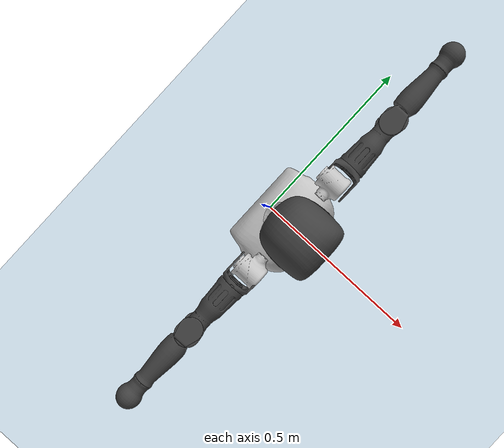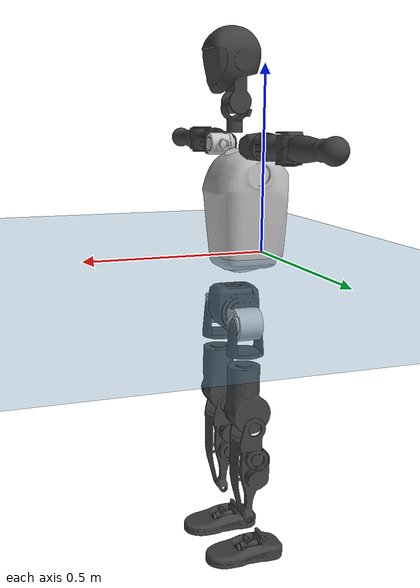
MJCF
<mujoco model="T1">
  <compiler angle="radian" assetdir="assets" balanceinertia="true" inertiafromgeom="false"/>

  <option timestep="0.005" density="1.2" viscosity="2e-05"/>

  <size nkey="1"/>

  <visual>
    <quality shadowsize="8192"/>
    <map shadowclip="0.5"/>
  </visual>

  <default>
    <default class="/">
      <joint armature="0.01" damping="0.01" frictionloss="0.1"/>
      <geom contype="0" conaffinity="0" group="1" solref="-1000 -80"/>
      <site size="0.01 0.005 0.005" group="5"/>
      <general forcelimited="true" biastype="affine" gainprm="25" biasprm="0 -25 -0.6"/>
      <default class="t1">
        <geom rgba="0.25 0.25 0.25 1"/>
        <default class="visual">
          <geom type="mesh" group="2"/>
        </default>
        <default class="collision">
          <geom group="3"/>
        </default>
        <default class="foot">
          <geom size="0.1115 0.05 0.015" type="box" condim="6" group="4" priority="1" solimp="0.015 1 0.015"/>
        </default>
        <default class="reward_collision_sphere">
          <geom group="5" rgba="1 0 0 1"/>
        </default>
      </default>
    </default>
  </default>

  <asset>
    <texture type="skybox" colorspace="auto" name="//unnamed_texture_0" builtin="gradient" rgb1="0.95 0.95 0.95" rgb2="0.95 0.95 0.95" width="100" height="600"/>
    <texture type="2d" colorspace="auto" name="texplane" builtin="checker" rgb1="0.345 0.575 0.748" rgb2="0.345 0.575 0.748" markrgb="1 1 1" width="512" height="512"/>
    <material name="MatPlane" class="/" texture="texplane" texuniform="true" texrepeat="2 2" specular="0.9"/>
    <mesh name="Trunk" class="/" file="Trunk.stl"/>
    <mesh name="H1" class="/" file="H1.stl"/>
    <mesh name="H2" class="/" file="H2.stl"/>
    <mesh name="AL1" class="/" file="AL1.stl"/>
    <mesh name="AL2" class="/" file="AL2.stl"/>
    <mesh name="AL3" class="/" file="AL3.stl"/>
    <mesh name="left_hand_link" class="/" file="left_hand_link.stl"/>
    <mesh name="AR1" class="/" file="AR1.stl"/>
    <mesh name="AR2" class="/" file="AR2.stl"/>
    <mesh name="AR3" class="/" file="AR3.stl"/>
    <mesh name="right_hand_link" class="/" file="right_hand_link.stl"/>
    <mesh name="Waist" class="/" file="Waist.stl"/>
    <mesh name="Hip_Pitch_Left" class="/" file="Hip_Pitch_Left.stl"/>
    <mesh name="Hip_Roll_Left" class="/" file="Hip_Roll_Left.stl"/>
    <mesh name="Hip_Yaw_Left" class="/" file="Hip_Yaw_Left.stl"/>
    <mesh name="Shank_Left" class="/" file="Shank_Left.stl"/>
    <mesh name="Ankle_Cross_Left" class="/" file="Ankle_Cross_Left.stl"/>
    <mesh name="left_foot_link" class="/" file="left_foot_link.stl"/>
    <mesh name="Hip_Pitch_Right" class="/" file="Hip_Pitch_Right.stl"/>
    <mesh name="Hip_Roll_Right" class="/" file="Hip_Roll_Right.stl"/>
    <mesh name="Hip_Yaw_Right" class="/" file="Hip_Yaw_Right.stl"/>
    <mesh name="Shank_Right" class="/" file="Shank_Right.stl"/>
    <mesh name="Ankle_Cross_Right" class="/" file="Ankle_Cross_Right.stl"/>
    <mesh name="right_foot_link" class="/" file="right_foot_link.stl"/>
  </asset>

  <worldbody>
    <geom name="floor" class="/" size="100 100 0.125" type="plane" group="0" material="MatPlane"/>
    <light name="toplight_shadow" class="/" pos="0 0 5" dir="0.0990148 0.0990148 -0.990148" type="directional" ambient="0.04 0.04 0.04" diffuse="0.55 0.55 0.55" specular="0.12 0.12 0.12"/>
    <light name="toplight_fill" class="/" pos="0 0 5" dir="0.0990148 0.0990148 -0.990148" type="directional" castshadow="false" ambient="0.04 0.04 0.04" diffuse="0.3 0.3 0.3" specular="0.08 0.08 0.08"/>
    <body name="trunk" childclass="t1" pos="0.000337521 0.00016795 0.0018379" quat="0.999999 0.000661763 0.000438321 -0.00101459">
      <inertial pos="0.0713409 -0.00126562 0.136122" quat="0.999847 -0.00304761 -0.0123981 0.0119487" mass="18.3544" diaginertia="0.275445 0.0440338 0.192202"/>
      <joint name="//unnamed_joint_0" type="free" armature="0" damping="0" frictionloss="0"/>
      <geom name="//unnamed_geom_1" class="visual" rgba="0.76 0.76 0.76 1" mesh="Trunk"/>
      <geom name="//unnamed_geom_2" class="collision" size="0.0869542 0.115939 0.173908" pos="0.0769278 0 0.155938" type="box"/>
      <geom name="//unnamed_geom_3" class="reward_collision_sphere" size="0.13333" pos="0.0769278 0 0.129948"/>
      <geom name="//unnamed_geom_4" class="reward_collision_sphere" size="0.0173908" pos="0.0769278 0.0762071 0"/>
      <geom name="//unnamed_geom_5" class="reward_collision_sphere" size="0.0173908" pos="0.0769278 -0.0762071 0"/>
      <geom name="//unnamed_geom_6" class="reward_collision_sphere" size="0.0173908" pos="0.0769278 0.0959313 0.233907"/>
      <geom name="//unnamed_geom_7" class="reward_collision_sphere" size="0.0173908" pos="0.0769278 -0.0959313 0.233907"/>
      <site name="imu" pos="-0.0112943 0.00122006 0.0105822" size="0.0115939"/>
      <camera name="track" pos="0 -1.79311 0" quat="0.707107 0.707107 0 0" mode="trackcom"/>
      <camera name="ego_camera" pos="0.15642 0 0.545783" quat="-0.5 -0.5 0.5 0.5"/>
      <body name="H1" pos="0.0831674 -0.000523028 0.321148" quat="1 0.00021007 0.000184272 0.000505007">
        <inertial pos="-0.00259612 -0.00391764 0.0746107" quat="0.764601 -0.0125347 0.000943418 0.644381" mass="0.700898" diaginertia="0.000834897 0.000130408 0.000559301"/>
        <joint name="AAHead_yaw" pos="0 0 0" axis="-0.00859342 0.00917271 0.999921" range="-1.61392 1.60118" armature="0.00849088" damping="0.0141862" frictionloss="0.0883364"/>
        <geom name="//unnamed_geom_8" class="visual" mesh="H1"/>
        <body name="H2" pos="-0.00107563 0.00728504 0.0782096" quat="1 0.000460051 2.24391e-05 -0.00025114">
          <inertial pos="0.00643201 0.00474016 0.13452" quat="0.988869 0.113659 -0.0724182 -0.0630445" mass="1.01079" diaginertia="0.00741379 0.00123248 0.00649525"/>
          <joint name="Head_pitch" pos="0 0 0" axis="0.0042787 -0.999976 0.00542921" range="-1.18781 0.314494" armature="0.0109771" damping="0.0319163" frictionloss="0.129383"/>
          <geom name="//unnamed_geom_9" class="visual" mesh="H2"/>
          <geom name="//unnamed_geom_10" class="collision" size="0.0927511" pos="0.0128213 0 0.142943"/>
          <geom name="//unnamed_geom_11" class="reward_collision_sphere" size="0.104345" pos="0.0256426 0 0.129948"/>
        </body>
      </body>
      <body name="AL1" pos="0.0775093 0.098714 0.289845" quat="0.999995 0.00227321 0.00186546 0.00117541">
        <inertial pos="0.000408964 0.0418306 -0.00199428" quat="0.50468 0.494768 -0.503852 0.496625" mass="0.826401" diaginertia="0.0047516 0.000808134 0.00114318"/>
        <joint name="Left_Shoulder_Pitch" pos="0 0 0" axis="-0.00610075 0.999937 -0.00940484" range="-3.29302 1.1039" armature="0.011355" damping="0.0339337" frictionloss="0.113897"/>
        <geom name="//unnamed_geom_12" class="visual" rgba="0.76 0.76 0.76 1" mesh="AL1"/>
        <body name="AL2" pos="0.0050813 0.0436739 0.00101516" quat="1 -2.19212e-05 -0.000178924 0.00012048">
          <inertial pos="0.00452968 0.0288726 4.68376e-05" quat="0.488056 0.514792 -0.494428 0.502326" mass="0.239341" diaginertia="0.00138747 0.000202729 0.000649433"/>
          <joint name="Left_Shoulder_Roll" pos="0 0 0" axis="-0.999895 -0.00174561 0.0143784" stiffness="0.0337083" range="-1.57416 1.77105" armature="0.00817424" damping="0.0123889" frictionloss="0.113369"/>
          <geom name="//unnamed_geom_13" class="visual" mesh="AL2"/>
          <body name="AL3" pos="0.00191037 0.0544192 -0.000631472" quat="0.999999 0.000827101 -0.000185452 0.000717609">
            <inertial pos="-0.00440045 0.081843 0.000637684" quat="0.707456 0.706752 -3.71893e-05 -0.00289904" mass="1.75242" diaginertia="0.0440905 0.00778071 0.00246785"/>
            <joint name="Left_Elbow_Pitch" pos="0 0 0" axis="0.000827345 -0.999999 -0.00129333" range="-2.15006 2.25163" armature="0.00736079" damping="0" frictionloss="0.109437"/>
            <geom name="//unnamed_geom_14" class="visual" mesh="AL3"/>
            <geom name="//unnamed_geom_15" class="collision" size="0.0347817 0.0869542" pos="0 0.0448277 0" quat="0.707105 0.707108 0 0" type="cylinder"/>
            <geom name="//unnamed_geom_16" class="reward_collision_sphere" size="0.041738"/>
            <body name="left_hand_link" pos="-0.00176041 0.134592 0.00158837" quat="0.999996 0.0024878 -0.000930507 0.00115988">
              <inertial pos="0.00601745 0.0990584 0.00168351" quat="0.703576 0.710569 0.00557743 -0.00636447" mass="0.513553" diaginertia="0.0300727 0.00478862 0.000756792"/>
              <joint name="Left_Elbow_Yaw" pos="0 0 0" axis="-0.00121659 0.00293918 0.999995" stiffness="0.00445078" range="-2.46453 0.126359" armature="0.0101319" damping="0.0121905" frictionloss="0.11912"/>
              <geom name="//unnamed_geom_17" class="visual" mesh="left_hand_link"/>
              <geom name="//unnamed_geom_18" class="collision" size="0.0347817 0.101447" pos="0 0.116552 0" quat="0.707105 0.707108 0 0" type="cylinder"/>
              <geom name="//unnamed_geom_19" class="reward_collision_sphere" size="0.0579694"/>
              <geom name="//unnamed_geom_20" class="reward_collision_sphere" size="0.0405786" pos="0 0.098621 0"/>
              <geom name="//unnamed_geom_21" class="reward_collision_sphere" size="0.0405786" pos="0 0.192759 0"/>
            </body>
          </body>
        </body>
      </body>
      <body name="AR1" pos="0.0743899 -0.0900322 0.28784" quat="1 -0.000327517 0.000696374 -0.000294072">
        <inertial pos="0.000579675 -0.0332432 -0.00184718" quat="0.507175 0.491468 -0.503369 0.497847" mass="0.883165" diaginertia="0.00496132 0.000769342 0.00114886"/>
        <joint name="Right_Shoulder_Pitch" pos="0 0 0" axis="-0.0181664 -0.999809 -0.00721957" stiffness="0.0329686" range="-1.22031 3.31612" armature="0.00916096" damping="0" frictionloss="0.115187"/>
        <geom name="//unnamed_geom_22" class="visual" rgba="0.76 0.76 0.76 1" mesh="AR1"/>
        <body name="AR2" pos="-0.00635644 -0.0432602 0.00103587" quat="0.999997 -0.00135371 0.000796605 -0.00179268">
          <inertial pos="0.00648574 -0.0321637 -0.000802027" quat="0.512813 0.486757 -0.512694 0.487068" mass="0.265869" diaginertia="0.00140092 0.00018881 0.000639801"/>
          <joint name="Right_Shoulder_Roll" pos="0 0 0" axis="-0.999971 0.00757767 0.000566145" range="-1.71525 1.60045" armature="0.0116618" damping="0.00840103" frictionloss="0.0746509"/>
          <geom name="//unnamed_geom_23" class="visual" mesh="AR2"/>
          <body name="AR3" pos="-0.00121693 -0.0529647 0.00728125" quat="1 -0.00011146 -2.49676e-05 -0.000363279">
            <inertial pos="0.00159204 -0.071613 -0.000484273" quat="0.705011 0.708899 0.00537689 -0.0198122" mass="1.57451" diaginertia="0.0441297 0.00717634 0.0021662"/>
            <joint name="Right_Elbow_Pitch" pos="0 0 0" axis="0.0180333 0.999758 -0.0125821" range="-2.18191 2.28769" armature="0.0146529" damping="0.0178091" frictionloss="0.106837"/>
            <geom name="//unnamed_geom_24" class="visual" mesh="AR3"/>
            <geom name="//unnamed_geom_25" class="collision" size="0.0347817 0.0869542" pos="0 -0.0448277 0" quat="0.707105 0.707108 0 0" type="cylinder"/>
            <geom name="//unnamed_geom_26" class="reward_collision_sphere" size="0.041738"/>
            <body name="right_hand_link" pos="-0.00146575 -0.13324 -0.00208152" quat="0.999999 0.000299133 0.0016497 -0.000348614">
              <inertial pos="0.00201609 -0.0984504 -0.00423633" quat="0.706217 0.707994 -0.000665529 -0.00102412" mass="0.494925" diaginertia="0.0275131 0.00481788 0.000794943"/>
              <joint name="Right_Elbow_Yaw" pos="0 0 0" axis="-0.00641591 0.00484782 0.999968" stiffness="0.00616964" range="-0.0332999 2.40848" armature="0.00887763" damping="0.0390477" frictionloss="0.101666"/>
              <geom name="//unnamed_geom_27" class="visual" mesh="right_hand_link"/>
              <geom name="//unnamed_geom_28" class="collision" size="0.0347817 0.101447" pos="0 -0.116552 0" quat="0.707105 0.707108 0 0" type="cylinder"/>
              <geom name="//unnamed_geom_29" class="reward_collision_sphere" size="0.0579694"/>
              <geom name="//unnamed_geom_30" class="reward_collision_sphere" size="0.0405786" pos="0 -0.098621 0"/>
              <geom name="//unnamed_geom_31" class="reward_collision_sphere" size="0.0405786" pos="0 -0.192759 0"/>
            </body>
          </body>
        </body>
      </body>
      <body name="Waist" pos="0.0818256 0.00316901 -0.156236" quat="1 0.000254669 7.68248e-05 -0.000196121">
        <inertial pos="0.00776331 -0.00238095 0.0120839" quat="0.985419 -0.0171663 -0.169221 -0.00432835" mass="4.39539" diaginertia="0.020805 0.00325444 0.0192266"/>
        <joint name="Waist" pos="0 0 0" axis="-0.0214955 0.0070059 0.999744" range="-1.52579 1.66346" armature="0.0121598" damping="0.00210837" frictionloss="0.0919055"/>
        <geom name="//unnamed_geom_32" class="visual" mesh="Waist"/>
        <body name="Hip_Pitch_Left" pos="0.00207599 0.0946295 -0.00118227" quat="1 2.98005e-05 -4.16707e-05 2.94448e-05">
          <inertial pos="-1.12636e-05 -0.00679848 -0.0256661" quat="0.973167 0.229517 0.0156362 -0.0047827" mass="1.63367" diaginertia="0.00628525 0.000809734 0.00478256"/>
          <joint name="Left_Hip_Pitch" pos="0 0 0" axis="-0.0178963 0.999319 0.032283" stiffness="0.0270045" range="-1.8291 1.4522" armature="0.0113928" damping="0.0285725" frictionloss="0.110286"/>
          <geom name="//unnamed_geom_33" class="visual" rgba="0.76 0.76 0.76 1" mesh="Hip_Pitch_Left"/>
          <body name="Hip_Roll_Left" pos="-0.00119794 -0.00748554 -0.0298757" quat="0.999994 -0.00189606 -0.00294503 0.000147151">
            <inertial pos="0.00476695 0.000140293 -0.0676616" quat="0.711767 -0.00981752 -0.00582946 0.702323" mass="0.62964" diaginertia="0.00612589 0.000966581 0.00206488"/>
            <joint name="Left_Hip_Roll" pos="0 0 0" axis="-0.999563 -0.0291767 0.00482687" range="-1.55552 0.186802" armature="0.0115645" damping="0" frictionloss="0.102542"/>
            <geom name="//unnamed_geom_34" class="visual" mesh="Hip_Roll_Left"/>
            <geom name="//unnamed_geom_35" class="reward_collision_sphere" size="0.0637664"/>
            <body name="Hip_Yaw_Left" pos="0.00131361 0.002581 -0.107136" quat="1 -0.000242703 -7.94334e-05 0.000261173">
              <inertial pos="-0.00763432 0.00206069 -0.115634" quat="0.709371 -0.0376302 -0.00930752 0.703768" mass="3.55641" diaginertia="0.0906522 0.01509 0.0101666"/>
              <joint name="Left_Hip_Yaw" pos="0 0 0" axis="-0.00233251 0.0108091 -0.999939" range="-0.956379 0.993921" armature="0.0115427" damping="0.00878067" frictionloss="0.127745"/>
              <geom name="//unnamed_geom_36" class="visual" mesh="Hip_Yaw_Left"/>
              <geom name="//unnamed_geom_37" class="collision" size="0.0579694 0.0927511" type="cylinder"/>
              <body name="Shank_Left" pos="-0.0187788 0.00474117 -0.171868" quat="1 -0.000248126 -0.000346708 0.000478971">
                <inertial pos="-0.00835375 0.00328557 -0.163804" quat="0.997536 0.0191923 -0.0219947 0.0637991" mass="2.64" diaginertia="0.118831 0.0195624 0.00722855"/>
                <joint name="Left_Knee_Pitch" pos="0 0 0" axis="0.00306957 0.999995 -0.00101351" range="0.0197259 2.34209" armature="0.00904737" damping="0.014526" frictionloss="0.103866"/>
                <geom name="//unnamed_geom_38" class="visual" mesh="Shank_Left"/>
                <geom name="//unnamed_geom_39" class="collision" size="0.0579694 0.0869542" pos="0 0 -0.155938" type="cylinder"/>
                <geom name="//unnamed_geom_40" class="reward_collision_sphere" size="0.0753603"/>
                <body name="Ankle_Cross_Left" pos="-0.00294122 -0.00233995 -0.360416" quat="0.999997 -0.00129033 -0.000755159 0.00183871">
                  <inertial pos="-0.00487757 0.00652831 -0.0125998" quat="0.455147 0.545973 0.548974 0.439752" mass="0.111523" diaginertia="9.85236e-05 1.39014e-05 4.02955e-05"/>
                  <joint name="Left_Ankle_Pitch" pos="0 0 0" axis="0.00455431 0.999964 -0.00711554" range="-0.836482 0.380195" armature="0.0107521" damping="0" frictionloss="0.127545"/>
                  <geom name="//unnamed_geom_41" class="visual" mesh="Ankle_Cross_Left"/>
                  <body name="left_foot_link" pos="0.00329598 0.00608342 -0.0160707" quat="1 7.7039e-05 7.82808e-05 8.309e-05">
                    <inertial pos="-0.00476308 -0.00154832 -0.0186764" quat="0.00795887 0.620438 -0.00646076 0.784188" mass="1.06647" diaginertia="0.00884997 0.00138507 0.0077935"/>
                    <joint name="Left_Ankle_Roll" pos="0 0 0" axis="-0.999999 4.93332e-05 -0.00131115" range="-0.454892 0.438812" armature="0.0144611" damping="0.00762642" frictionloss="0.114001"/>
                    <geom name="//unnamed_geom_42" class="visual" mesh="left_foot_link"/>
                    <geom name="left_foot" class="foot" size="0.0789868 0.0648093 0.019406" pos="0.0128213 0 -0.0194922"/>
                    <geom name="//unnamed_geom_44" class="reward_collision_sphere" size="0.0602882" pos="0.0128213 0 -0.0194922"/>
                    <geom name="//unnamed_geom_45" class="reward_collision_sphere" size="0.0347817" pos="0.121802 -0.0206208 -0.0194922"/>
                    <geom name="//unnamed_geom_46" class="reward_collision_sphere" size="0.0347817" pos="-0.089749 -0.0206208 -0.0194922"/>
                    <site name="left_foot" class="foot" pos="0.0128213 0 -0.0194922" size="0.0115939"/>
                  </body>
                </body>
              </body>
            </body>
          </body>
        </body>
        <body name="Hip_Pitch_Right" pos="0.0031324 -0.0994164 0.00158624" quat="0.999994 0.00108677 0.000673494 -0.00308758">
          <inertial pos="-0.00168736 0.0142843 -0.0228543" quat="0.974245 -0.225134 0.0126721 -0.00101879" mass="1.67102" diaginertia="0.0066968 0.000922761 0.00485359"/>
          <joint name="Right_Hip_Pitch" pos="0 0 0" axis="-0.00236142 -0.999972 -0.00709278" range="-1.52174 1.76591" armature="0.0115818" damping="0.0105304" frictionloss="0.0809821"/>
          <geom name="//unnamed_geom_47" class="visual" rgba="0.76 0.76 0.76 1" mesh="Hip_Pitch_Right"/>
          <body name="Hip_Roll_Right" pos="0.0025052 -0.00149335 -0.0272363" quat="1 -0.000160768 2.75863e-05 -0.000726735">
            <inertial pos="0.00645074 -0.00673336 -0.063614" quat="0.706176 -0.00546103 -0.00438398 0.708002" mass="0.584835" diaginertia="0.00579707 0.000873525 0.00189835"/>
            <joint name="Right_Hip_Roll" pos="0 0 0" axis="-0.999893 0.0109985 -0.00961609" stiffness="0.00239097" range="-0.240342 1.56633" armature="0.0117767" damping="0.0132638" frictionloss="0.129012"/>
            <geom name="//unnamed_geom_48" class="visual" mesh="Hip_Roll_Right"/>
            <geom name="//unnamed_geom_49" class="reward_collision_sphere" size="0.0637664"/>
            <body name="Hip_Yaw_Right" pos="0.00165021 0.00119747 -0.110131" quat="1 -0.000267657 0.000116785 -0.000100021">
              <inertial pos="-0.010521 0.00165611 -0.113763" quat="0.714508 -0.0319363 -0.0337104 0.698085" mass="3.52392" diaginertia="0.0865194 0.0149207 0.00938612"/>
              <joint name="Right_Hip_Yaw" pos="0 0 0" axis="0.00465635 -0.0142096 -0.999888" range="-1.06573 1.07611" armature="0.0156098" damping="0" frictionloss="0.0848107"/>
              <geom name="//unnamed_geom_50" class="visual" mesh="Hip_Yaw_Right"/>
              <geom name="//unnamed_geom_51" class="collision" size="0.0579694 0.0927511" type="cylinder"/>
              <body name="Shank_Right" pos="-0.015973 -0.0060505 -0.174371" quat="0.999997 0.000189742 -0.00185514 0.00145308">
                <inertial pos="-0.00812387 -0.00288509 -0.165491" quat="0.999009 0.0102611 -0.0261336 -0.0345417" mass="2.88986" diaginertia="0.122919 0.0196856 0.00659851"/>
                <joint name="Right_Knee_Pitch" pos="0 0 0" axis="-0.012547 -0.999811 -0.0148798" range="-2.41755 0.0688564" armature="0.0103633" damping="0" frictionloss="0.109906"/>
                <geom name="//unnamed_geom_52" class="visual" mesh="Shank_Right"/>
                <geom name="//unnamed_geom_53" class="collision" size="0.0579694 0.0869542" pos="0 0 -0.155938" type="cylinder"/>
                <geom name="//unnamed_geom_54" class="reward_collision_sphere" size="0.0753603"/>
                <body name="Ankle_Cross_Right" pos="7.60559e-05 0.00369789 -0.362897" quat="0.999993 0.00133444 -0.000947251 0.00334442">
                  <inertial pos="-0.00591047 -0.000841176 -0.0133611" quat="0.443054 0.550455 0.552854 0.44165" mass="0.115504" diaginertia="0.00010255 1.48457e-05 4.38306e-05"/>
                  <joint name="Right_Ankle_Pitch" pos="0 0 0" axis="-0.00747153 -0.999955 -0.00586849" range="-0.273203 0.899823" armature="0.0127477" damping="0.000578846" frictionloss="0.102282"/>
                  <geom name="//unnamed_geom_55" class="visual" mesh="Ankle_Cross_Right"/>
                  <body name="right_foot_link" pos="4.956e-05 0.0043046 -0.015721" quat="1 0.000504814 0.000710838 0.000228804">
                    <inertial pos="-0.00230759 0.00154055 -0.00820927" quat="-0.00715526 0.620037 0.00732131 0.784506" mass="1.05064" diaginertia="0.00960064 0.00139692 0.00831719"/>
                    <joint name="Right_Ankle_Roll" pos="0 0 0" axis="-0.999932 0.0061494 0.0099561" stiffness="0.0028999" range="-0.588689 0.421721" armature="0.00921901" damping="0.00100595" frictionloss="0.128764"/>
                    <geom name="//unnamed_geom_56" class="visual" mesh="right_foot_link"/>
                    <geom name="right_foot" class="foot" size="0.0905153 0.0624507 0.0182371" pos="0.0128213 0 -0.0194922"/>
                    <geom name="//unnamed_geom_58" class="reward_collision_sphere" size="0.0463756"/>
                    <geom name="//unnamed_geom_59" class="reward_collision_sphere" size="0.0347817" pos="0.0128213 0 -0.0194922"/>
                    <geom name="//unnamed_geom_60" class="reward_collision_sphere" size="0.0347817" pos="0.121802 0.0206208 -0.0194922"/>
                    <geom name="//unnamed_geom_61" class="reward_collision_sphere" size="0.0347817" pos="-0.089749 0.0206208 -0.0194922"/>
                    <site name="right_foot" class="foot" pos="0.0128213 0 -0.0194922" size="0.0115939"/>
                  </body>
                </body>
              </body>
            </body>
          </body>
        </body>
      </body>
    </body>
  </worldbody>

  <contact>
    <pair class="/" geom1="floor" geom2="left_foot" name="//unnamed_contact_0"/>
    <pair class="/" geom1="floor" geom2="right_foot" name="//unnamed_contact_1"/>
  </contact>

  <actuator>
    <general name="AAHead_yaw" class="/" joint="AAHead_yaw" forcerange="-8.42067 8.42067" gainprm="29.5072" biasprm="0 -29.5072 -0.661536"/>
    <general name="Head_pitch" class="/" joint="Head_pitch" forcerange="-7.5141 7.5141" gainprm="29.5072" biasprm="0 -29.5072 -0.661536"/>
    <general name="Left_Shoulder_Pitch" class="/" joint="Left_Shoulder_Pitch" forcerange="-18.5606 18.5606" gainprm="29.5072" biasprm="0 -29.5072 -0.661536"/>
    <general name="Left_Shoulder_Roll" class="/" joint="Left_Shoulder_Roll" forcerange="-17.505 17.505" gainprm="29.5072" biasprm="0 -29.5072 -0.661536"/>
    <general name="Left_Elbow_Pitch" class="/" joint="Left_Elbow_Pitch" forcerange="-19.6498 19.6498" gainprm="29.5072" biasprm="0 -29.5072 -0.661536"/>
    <general name="Left_Elbow_Yaw" class="/" joint="Left_Elbow_Yaw" forcerange="-21.9271 21.9271" gainprm="29.5072" biasprm="0 -29.5072 -0.661536"/>
    <general name="Right_Shoulder_Pitch" class="/" joint="Right_Shoulder_Pitch" forcerange="-20.8432 20.8432" gainprm="29.5072" biasprm="0 -29.5072 -0.661536"/>
    <general name="Right_Shoulder_Roll" class="/" joint="Right_Shoulder_Roll" forcerange="-19.9026 19.9026" gainprm="29.5072" biasprm="0 -29.5072 -0.661536"/>
    <general name="Right_Elbow_Pitch" class="/" joint="Right_Elbow_Pitch" forcerange="-22.9271 22.9271" gainprm="29.5072" biasprm="0 -29.5072 -0.661536"/>
    <general name="Right_Elbow_Yaw" class="/" joint="Right_Elbow_Yaw" forcerange="-18.9105 18.9105" gainprm="29.5072" biasprm="0 -29.5072 -0.661536"/>
    <general name="Waist" class="/" joint="Waist" forcerange="-40.5565 40.5565" gainprm="29.5072" biasprm="0 -29.5072 -0.661536"/>
    <general name="Left_Hip_Pitch" class="/" joint="Left_Hip_Pitch" forcerange="-49.3854 49.3854" gainprm="29.5072" biasprm="0 -29.5072 -0.661536"/>
    <general name="Left_Hip_Roll" class="/" joint="Left_Hip_Roll" forcerange="-33.676 33.676" gainprm="29.5072" biasprm="0 -29.5072 -0.661536"/>
    <general name="Left_Hip_Yaw" class="/" joint="Left_Hip_Yaw" forcerange="-31.8949 31.8949" gainprm="29.5072" biasprm="0 -29.5072 -0.661536"/>
    <general name="Left_Knee_Pitch" class="/" joint="Left_Knee_Pitch" forcerange="-78.6157 78.6157" gainprm="29.5072" biasprm="0 -29.5072 -0.661536"/>
    <general name="Left_Ankle_Pitch" class="/" joint="Left_Ankle_Pitch" forcerange="-17.4596 17.4596" gainprm="29.5072" biasprm="0 -29.5072 -0.661536"/>
    <general name="Left_Ankle_Roll" class="/" joint="Left_Ankle_Roll" forcerange="-22.1856 22.1856" gainprm="29.5072" biasprm="0 -29.5072 -0.661536"/>
    <general name="Right_Hip_Pitch" class="/" joint="Right_Hip_Pitch" forcerange="-50.245 50.245" gainprm="29.5072" biasprm="0 -29.5072 -0.661536"/>
    <general name="Right_Hip_Roll" class="/" joint="Right_Hip_Roll" forcerange="-39.4488 39.4488" gainprm="29.5072" biasprm="0 -29.5072 -0.661536"/>
    <general name="Right_Hip_Yaw" class="/" joint="Right_Hip_Yaw" forcerange="-27.8216 27.8216" gainprm="29.5072" biasprm="0 -29.5072 -0.661536"/>
    <general name="Right_Knee_Pitch" class="/" joint="Right_Knee_Pitch" forcerange="-73.9588 73.9588" gainprm="29.5072" biasprm="0 -29.5072 -0.661536"/>
    <general name="Right_Ankle_Pitch" class="/" joint="Right_Ankle_Pitch" forcerange="-23.8948 23.8948" gainprm="29.5072" biasprm="0 -29.5072 -0.661536"/>
    <general name="Right_Ankle_Roll" class="/" joint="Right_Ankle_Roll" forcerange="-17.7232 17.7232" gainprm="29.5072" biasprm="0 -29.5072 -0.661536"/>
  </actuator>

  <sensor>
    <gyro site="imu" name="imu_angular_velocity"/>
    <velocimeter site="imu" name="imu_linear_velocity"/>
    <framelinvel objtype="site" objname="left_foot" name="left_foot_global_linear_velocity"/>
    <framelinvel objtype="site" objname="right_foot" name="right_foot_global_linear_velocity"/>
  </sensor>

  <keyframe>
    <key name="home" qpos="0 0 0.6385 1 0 0 0 0 0 0 1.4 0 -0.4 0 -1.4 0 0.4 0 -0.4 0 0 0.8 -0.4 0 0.4 0 0 -0.8 0.4 0"/>
  </keyframe>
</mujoco>
